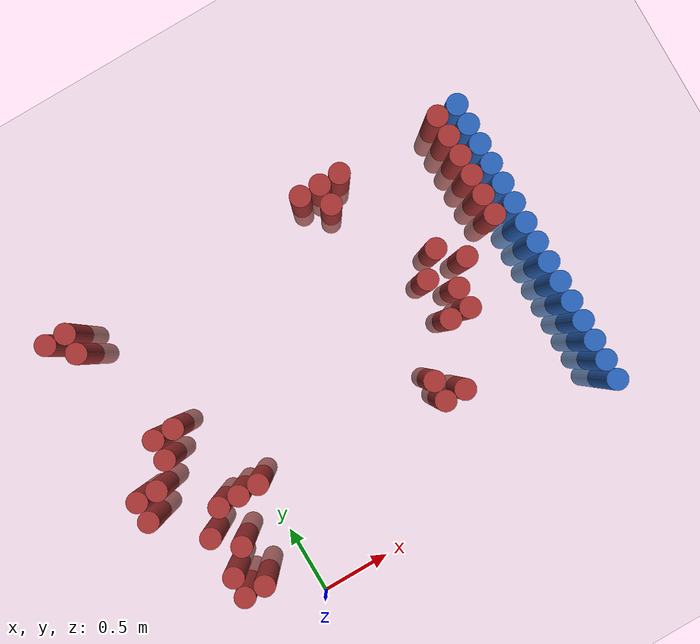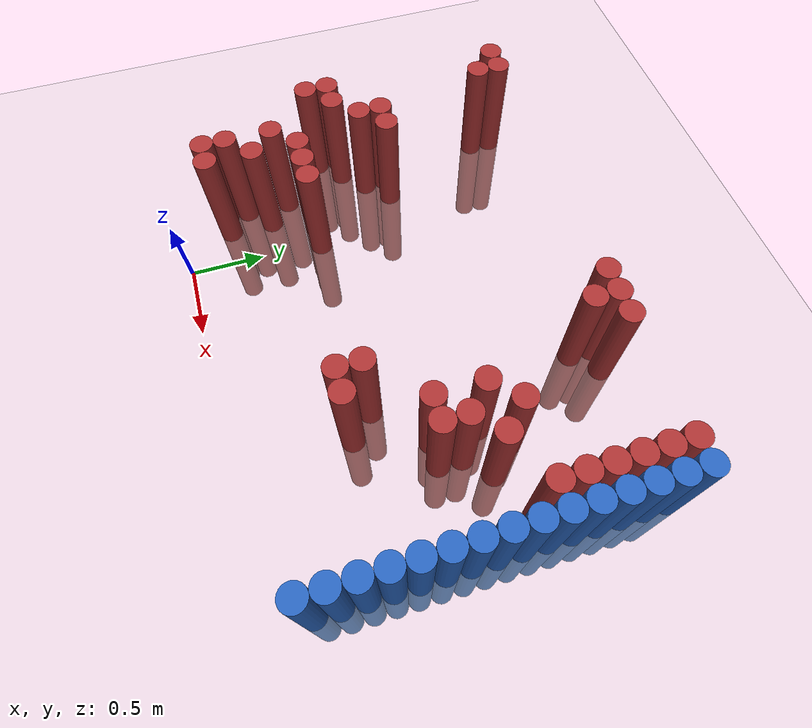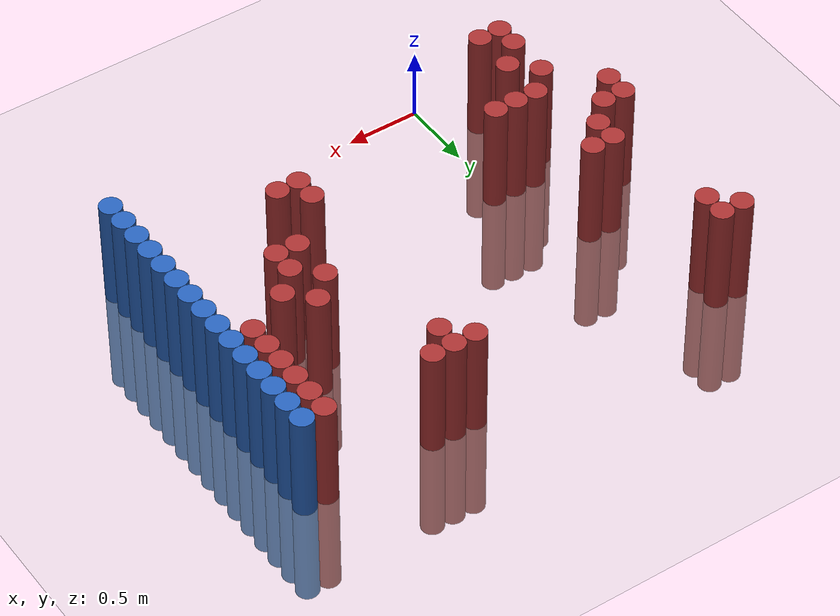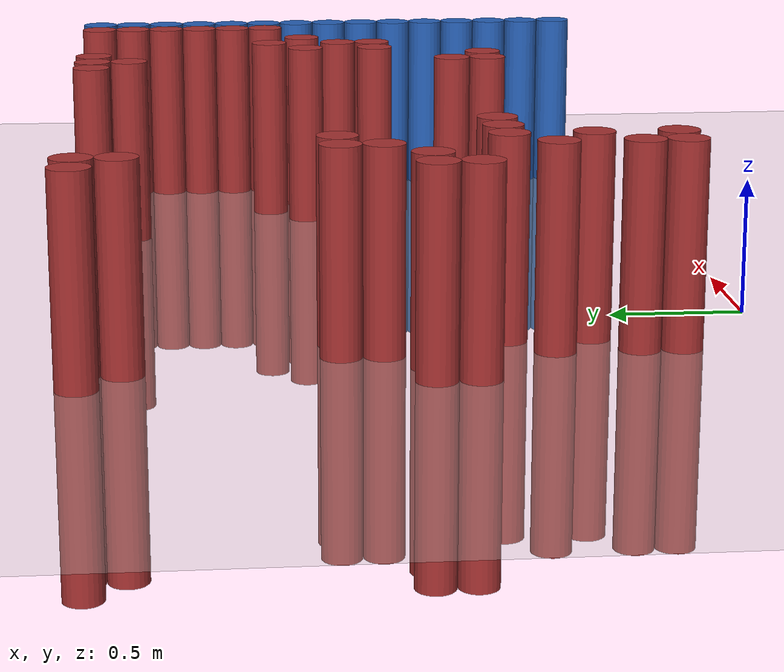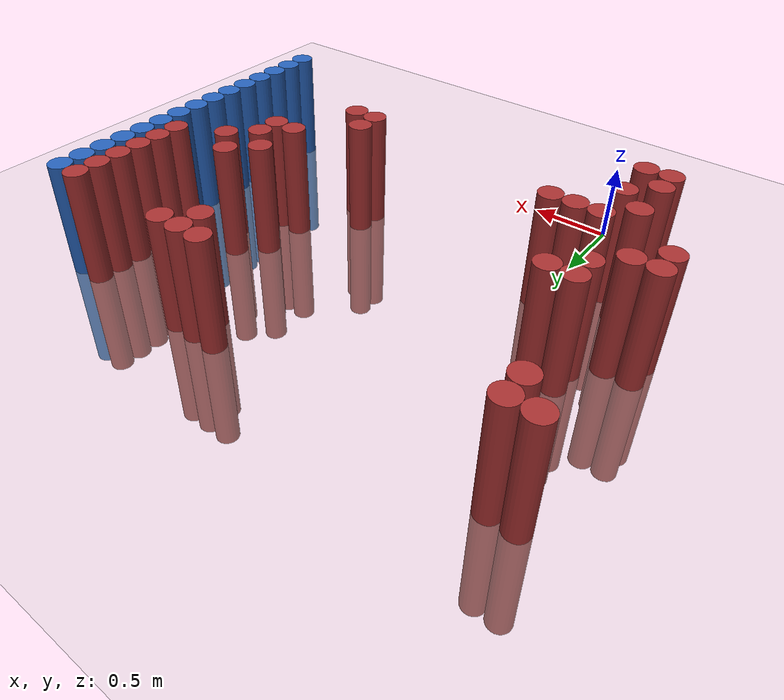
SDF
<sdf version="1.6">
 <world name="default">
  <model name="ground_plane">
   <static>1</static>
   <link name="link">
    <collision name="collision">
     <geometry><plane><normal>0 0 1</normal><size>100 100</size></plane></geometry>
     <surface><friction><ode><mu>100</mu><mu2>50</mu2></ode></friction></surface>
    </collision>
    <visual name="visual">
     <cast_shadows>0</cast_shadows>
     <geometry><plane><normal>0 0 1</normal><size>100 100</size></plane></geometry>
     <material>
      <script><uri>file://media/materials/scripts/gazebo.material</uri><name>Gazebo/Grey</name></script>
     </material>
    </visual>
   </link>
  </model>
  <model name="unit_cylinder_153">
   <static>1</static>
   <pose>-0.725000 1.075000 0.000000 0.000000 0.000000 0.000000</pose>
   <link name="link">
    <inertial>
     <mass>1</mass>
     <inertia><ixx>0.145833</ixx><ixy>0</ixy><ixz>0</ixz><iyy>0.145833</iyy><iyz>0</iyz><izz>0.125</izz></inertia>
    </inertial>
    <collision name="collision">
     <geometry><cylinder><radius>0.075000</radius><length>1.5</length></cylinder></geometry>
    </collision>
    <visual name="visual">
     <geometry><cylinder><radius>0.075000</radius><length>1.5</length></cylinder></geometry>
     <material>
      <ambient>0.648000 0.192000 0.192000 1</ambient>
      <diffuse>0.648000 0.192000 0.192000 1</diffuse>
     </material>
     <material>
      <script><name>Gazebo/Grey</name><uri>file://media/materials/scripts/gazebo.material</uri></script>
     </material>
    </visual>
   </link>
  </model>
  <model name="unit_cylinder_154">
   <static>1</static>
   <pose>-0.725000 1.225000 0.000000 0.000000 0.000000 0.000000</pose>
   <link name="link">
    <inertial>
     <mass>1</mass>
     <inertia><ixx>0.145833</ixx><ixy>0</ixy><ixz>0</ixz><iyy>0.145833</iyy><iyz>0</iyz><izz>0.125</izz></inertia>
    </inertial>
    <collision name="collision">
     <geometry><cylinder><radius>0.075000</radius><length>1.5</length></cylinder></geometry>
    </collision>
    <visual name="visual">
     <geometry><cylinder><radius>0.075000</radius><length>1.5</length></cylinder></geometry>
     <material>
      <ambient>0.648000 0.192000 0.192000 1</ambient>
      <diffuse>0.648000 0.192000 0.192000 1</diffuse>
     </material>
     <material>
      <script><name>Gazebo/Grey</name><uri>file://media/materials/scripts/gazebo.material</uri></script>
     </material>
    </visual>
   </link>
  </model>
  <model name="unit_cylinder_155">
   <static>1</static>
   <pose>-0.725000 2.425000 0.000000 0.000000 0.000000 0.000000</pose>
   <link name="link">
    <inertial>
     <mass>1</mass>
     <inertia><ixx>0.145833</ixx><ixy>0</ixy><ixz>0</ixz><iyy>0.145833</iyy><iyz>0</iyz><izz>0.125</izz></inertia>
    </inertial>
    <collision name="collision">
     <geometry><cylinder><radius>0.075000</radius><length>1.5</length></cylinder></geometry>
    </collision>
    <visual name="visual">
     <geometry><cylinder><radius>0.075000</radius><length>1.5</length></cylinder></geometry>
     <material>
      <ambient>0.648000 0.192000 0.192000 1</ambient>
      <diffuse>0.648000 0.192000 0.192000 1</diffuse>
     </material>
     <material>
      <script><name>Gazebo/Grey</name><uri>file://media/materials/scripts/gazebo.material</uri></script>
     </material>
    </visual>
   </link>
  </model>
  <model name="unit_cylinder_158">
   <static>1</static>
   <pose>-0.575000 1.225000 0.000000 0.000000 0.000000 0.000000</pose>
   <link name="link">
    <inertial>
     <mass>1</mass>
     <inertia><ixx>0.145833</ixx><ixy>0</ixy><ixz>0</ixz><iyy>0.145833</iyy><iyz>0</iyz><izz>0.125</izz></inertia>
    </inertial>
    <collision name="collision">
     <geometry><cylinder><radius>0.075000</radius><length>1.5</length></cylinder></geometry>
    </collision>
    <visual name="visual">
     <geometry><cylinder><radius>0.075000</radius><length>1.5</length></cylinder></geometry>
     <material>
      <ambient>0.648000 0.192000 0.192000 1</ambient>
      <diffuse>0.648000 0.192000 0.192000 1</diffuse>
     </material>
     <material>
      <script><name>Gazebo/Grey</name><uri>file://media/materials/scripts/gazebo.material</uri></script>
     </material>
    </visual>
   </link>
  </model>
  <model name="unit_cylinder_159">
   <static>1</static>
   <pose>-0.575000 2.275000 0.000000 0.000000 0.000000 0.000000</pose>
   <link name="link">
    <inertial>
     <mass>1</mass>
     <inertia><ixx>0.145833</ixx><ixy>0</ixy><ixz>0</ixz><iyy>0.145833</iyy><iyz>0</iyz><izz>0.125</izz></inertia>
    </inertial>
    <collision name="collision">
     <geometry><cylinder><radius>0.075000</radius><length>1.5</length></cylinder></geometry>
    </collision>
    <visual name="visual">
     <geometry><cylinder><radius>0.075000</radius><length>1.5</length></cylinder></geometry>
     <material>
      <ambient>0.648000 0.192000 0.192000 1</ambient>
      <diffuse>0.648000 0.192000 0.192000 1</diffuse>
     </material>
     <material>
      <script><name>Gazebo/Grey</name><uri>file://media/materials/scripts/gazebo.material</uri></script>
     </material>
    </visual>
   </link>
  </model>
  <model name="unit_cylinder_160">
   <static>1</static>
   <pose>-0.575000 2.425000 0.000000 0.000000 0.000000 0.000000</pose>
   <link name="link">
    <inertial>
     <mass>1</mass>
     <inertia><ixx>0.145833</ixx><ixy>0</ixy><ixz>0</ixz><iyy>0.145833</iyy><iyz>0</iyz><izz>0.125</izz></inertia>
    </inertial>
    <collision name="collision">
     <geometry><cylinder><radius>0.075000</radius><length>1.5</length></cylinder></geometry>
    </collision>
    <visual name="visual">
     <geometry><cylinder><radius>0.075000</radius><length>1.5</length></cylinder></geometry>
     <material>
      <ambient>0.648000 0.192000 0.192000 1</ambient>
      <diffuse>0.648000 0.192000 0.192000 1</diffuse>
     </material>
     <material>
      <script><name>Gazebo/Grey</name><uri>file://media/materials/scripts/gazebo.material</uri></script>
     </material>
    </visual>
   </link>
  </model>
  <model name="unit_cylinder_162">
   <static>1</static>
   <pose>-0.425000 0.325000 0.000000 0.000000 0.000000 0.000000</pose>
   <link name="link">
    <inertial>
     <mass>1</mass>
     <inertia><ixx>0.145833</ixx><ixy>0</ixy><ixz>0</ixz><iyy>0.145833</iyy><iyz>0</iyz><izz>0.125</izz></inertia>
    </inertial>
    <collision name="collision">
     <geometry><cylinder><radius>0.075000</radius><length>1.5</length></cylinder></geometry>
    </collision>
    <visual name="visual">
     <geometry><cylinder><radius>0.075000</radius><length>1.5</length></cylinder></geometry>
     <material>
      <ambient>0.648000 0.192000 0.192000 1</ambient>
      <diffuse>0.648000 0.192000 0.192000 1</diffuse>
     </material>
     <material>
      <script><name>Gazebo/Grey</name><uri>file://media/materials/scripts/gazebo.material</uri></script>
     </material>
    </visual>
   </link>
  </model>
  <model name="unit_cylinder_163">
   <static>1</static>
   <pose>-0.425000 0.475000 0.000000 0.000000 0.000000 0.000000</pose>
   <link name="link">
    <inertial>
     <mass>1</mass>
     <inertia><ixx>0.145833</ixx><ixy>0</ixy><ixz>0</ixz><iyy>0.145833</iyy><iyz>0</iyz><izz>0.125</izz></inertia>
    </inertial>
    <collision name="collision">
     <geometry><cylinder><radius>0.075000</radius><length>1.5</length></cylinder></geometry>
    </collision>
    <visual name="visual">
     <geometry><cylinder><radius>0.075000</radius><length>1.5</length></cylinder></geometry>
     <material>
      <ambient>0.648000 0.192000 0.192000 1</ambient>
      <diffuse>0.648000 0.192000 0.192000 1</diffuse>
     </material>
     <material>
      <script><name>Gazebo/Grey</name><uri>file://media/materials/scripts/gazebo.material</uri></script>
     </material>
    </visual>
   </link>
  </model>
  <model name="unit_cylinder_164">
   <static>1</static>
   <pose>-0.425000 0.775000 0.000000 0.000000 0.000000 0.000000</pose>
   <link name="link">
    <inertial>
     <mass>1</mass>
     <inertia><ixx>0.145833</ixx><ixy>0</ixy><ixz>0</ixz><iyy>0.145833</iyy><iyz>0</iyz><izz>0.125</izz></inertia>
    </inertial>
    <collision name="collision">
     <geometry><cylinder><radius>0.075000</radius><length>1.5</length></cylinder></geometry>
    </collision>
    <visual name="visual">
     <geometry><cylinder><radius>0.075000</radius><length>1.5</length></cylinder></geometry>
     <material>
      <ambient>0.648000 0.192000 0.192000 1</ambient>
      <diffuse>0.648000 0.192000 0.192000 1</diffuse>
     </material>
     <material>
      <script><name>Gazebo/Grey</name><uri>file://media/materials/scripts/gazebo.material</uri></script>
     </material>
    </visual>
   </link>
  </model>
  <model name="unit_cylinder_165">
   <static>1</static>
   <pose>-0.425000 1.375000 0.000000 0.000000 0.000000 0.000000</pose>
   <link name="link">
    <inertial>
     <mass>1</mass>
     <inertia><ixx>0.145833</ixx><ixy>0</ixy><ixz>0</ixz><iyy>0.145833</iyy><iyz>0</iyz><izz>0.125</izz></inertia>
    </inertial>
    <collision name="collision">
     <geometry><cylinder><radius>0.075000</radius><length>1.5</length></cylinder></geometry>
    </collision>
    <visual name="visual">
     <geometry><cylinder><radius>0.075000</radius><length>1.5</length></cylinder></geometry>
     <material>
      <ambient>0.648000 0.192000 0.192000 1</ambient>
      <diffuse>0.648000 0.192000 0.192000 1</diffuse>
     </material>
     <material>
      <script><name>Gazebo/Grey</name><uri>file://media/materials/scripts/gazebo.material</uri></script>
     </material>
    </visual>
   </link>
  </model>
  <model name="unit_cylinder_166">
   <static>1</static>
   <pose>-0.425000 1.525000 0.000000 0.000000 0.000000 0.000000</pose>
   <link name="link">
    <inertial>
     <mass>1</mass>
     <inertia><ixx>0.145833</ixx><ixy>0</ixy><ixz>0</ixz><iyy>0.145833</iyy><iyz>0</iyz><izz>0.125</izz></inertia>
    </inertial>
    <collision name="collision">
     <geometry><cylinder><radius>0.075000</radius><length>1.5</length></cylinder></geometry>
    </collision>
    <visual name="visual">
     <geometry><cylinder><radius>0.075000</radius><length>1.5</length></cylinder></geometry>
     <material>
      <ambient>0.648000 0.192000 0.192000 1</ambient>
      <diffuse>0.648000 0.192000 0.192000 1</diffuse>
     </material>
     <material>
      <script><name>Gazebo/Grey</name><uri>file://media/materials/scripts/gazebo.material</uri></script>
     </material>
    </visual>
   </link>
  </model>
  <model name="unit_cylinder_168">
   <static>1</static>
   <pose>-0.275000 0.325000 0.000000 0.000000 0.000000 0.000000</pose>
   <link name="link">
    <inertial>
     <mass>1</mass>
     <inertia><ixx>0.145833</ixx><ixy>0</ixy><ixz>0</ixz><iyy>0.145833</iyy><iyz>0</iyz><izz>0.125</izz></inertia>
    </inertial>
    <collision name="collision">
     <geometry><cylinder><radius>0.075000</radius><length>1.5</length></cylinder></geometry>
    </collision>
    <visual name="visual">
     <geometry><cylinder><radius>0.075000</radius><length>1.5</length></cylinder></geometry>
     <material>
      <ambient>0.648000 0.192000 0.192000 1</ambient>
      <diffuse>0.648000 0.192000 0.192000 1</diffuse>
     </material>
     <material>
      <script><name>Gazebo/Grey</name><uri>file://media/materials/scripts/gazebo.material</uri></script>
     </material>
    </visual>
   </link>
  </model>
  <model name="unit_cylinder_169">
   <static>1</static>
   <pose>-0.275000 0.625000 0.000000 0.000000 0.000000 0.000000</pose>
   <link name="link">
    <inertial>
     <mass>1</mass>
     <inertia><ixx>0.145833</ixx><ixy>0</ixy><ixz>0</ixz><iyy>0.145833</iyy><iyz>0</iyz><izz>0.125</izz></inertia>
    </inertial>
    <collision name="collision">
     <geometry><cylinder><radius>0.075000</radius><length>1.5</length></cylinder></geometry>
    </collision>
    <visual name="visual">
     <geometry><cylinder><radius>0.075000</radius><length>1.5</length></cylinder></geometry>
     <material>
      <ambient>0.648000 0.192000 0.192000 1</ambient>
      <diffuse>0.648000 0.192000 0.192000 1</diffuse>
     </material>
     <material>
      <script><name>Gazebo/Grey</name><uri>file://media/materials/scripts/gazebo.material</uri></script>
     </material>
    </visual>
   </link>
  </model>
  <model name="unit_cylinder_170">
   <static>1</static>
   <pose>-0.275000 0.925000 0.000000 0.000000 0.000000 0.000000</pose>
   <link name="link">
    <inertial>
     <mass>1</mass>
     <inertia><ixx>0.145833</ixx><ixy>0</ixy><ixz>0</ixz><iyy>0.145833</iyy><iyz>0</iyz><izz>0.125</izz></inertia>
    </inertial>
    <collision name="collision">
     <geometry><cylinder><radius>0.075000</radius><length>1.5</length></cylinder></geometry>
    </collision>
    <visual name="visual">
     <geometry><cylinder><radius>0.075000</radius><length>1.5</length></cylinder></geometry>
     <material>
      <ambient>0.648000 0.192000 0.192000 1</ambient>
      <diffuse>0.648000 0.192000 0.192000 1</diffuse>
     </material>
     <material>
      <script><name>Gazebo/Grey</name><uri>file://media/materials/scripts/gazebo.material</uri></script>
     </material>
    </visual>
   </link>
  </model>
  <model name="unit_cylinder_171">
   <static>1</static>
   <pose>-0.275000 1.525000 0.000000 0.000000 0.000000 0.000000</pose>
   <link name="link">
    <inertial>
     <mass>1</mass>
     <inertia><ixx>0.145833</ixx><ixy>0</ixy><ixz>0</ixz><iyy>0.145833</iyy><iyz>0</iyz><izz>0.125</izz></inertia>
    </inertial>
    <collision name="collision">
     <geometry><cylinder><radius>0.075000</radius><length>1.5</length></cylinder></geometry>
    </collision>
    <visual name="visual">
     <geometry><cylinder><radius>0.075000</radius><length>1.5</length></cylinder></geometry>
     <material>
      <ambient>0.648000 0.192000 0.192000 1</ambient>
      <diffuse>0.648000 0.192000 0.192000 1</diffuse>
     </material>
     <material>
      <script><name>Gazebo/Grey</name><uri>file://media/materials/scripts/gazebo.material</uri></script>
     </material>
    </visual>
   </link>
  </model>
  <model name="unit_cylinder_172">
   <static>1</static>
   <pose>-0.125000 0.925000 0.000000 0.000000 0.000000 0.000000</pose>
   <link name="link">
    <inertial>
     <mass>1</mass>
     <inertia><ixx>0.145833</ixx><ixy>0</ixy><ixz>0</ixz><iyy>0.145833</iyy><iyz>0</iyz><izz>0.125</izz></inertia>
    </inertial>
    <collision name="collision">
     <geometry><cylinder><radius>0.075000</radius><length>1.5</length></cylinder></geometry>
    </collision>
    <visual name="visual">
     <geometry><cylinder><radius>0.075000</radius><length>1.5</length></cylinder></geometry>
     <material>
      <ambient>0.648000 0.192000 0.192000 1</ambient>
      <diffuse>0.648000 0.192000 0.192000 1</diffuse>
     </material>
     <material>
      <script><name>Gazebo/Grey</name><uri>file://media/materials/scripts/gazebo.material</uri></script>
     </material>
    </visual>
   </link>
  </model>
  <model name="unit_cylinder_173">
   <static>1</static>
   <pose>0.025000 0.925000 0.000000 0.000000 0.000000 0.000000</pose>
   <link name="link">
    <inertial>
     <mass>1</mass>
     <inertia><ixx>0.145833</ixx><ixy>0</ixy><ixz>0</ixz><iyy>0.145833</iyy><iyz>0</iyz><izz>0.125</izz></inertia>
    </inertial>
    <collision name="collision">
     <geometry><cylinder><radius>0.075000</radius><length>1.5</length></cylinder></geometry>
    </collision>
    <visual name="visual">
     <geometry><cylinder><radius>0.075000</radius><length>1.5</length></cylinder></geometry>
     <material>
      <ambient>0.648000 0.192000 0.192000 1</ambient>
      <diffuse>0.648000 0.192000 0.192000 1</diffuse>
     </material>
     <material>
      <script><name>Gazebo/Grey</name><uri>file://media/materials/scripts/gazebo.material</uri></script>
     </material>
    </visual>
   </link>
  </model>
  <model name="unit_cylinder_184">
   <static>1</static>
   <pose>1.225000 2.425000 0.000000 0.000000 0.000000 0.000000</pose>
   <link name="link">
    <inertial>
     <mass>1</mass>
     <inertia><ixx>0.145833</ixx><ixy>0</ixy><ixz>0</ixz><iyy>0.145833</iyy><iyz>0</iyz><izz>0.125</izz></inertia>
    </inertial>
    <collision name="collision">
     <geometry><cylinder><radius>0.075000</radius><length>1.5</length></cylinder></geometry>
    </collision>
    <visual name="visual">
     <geometry><cylinder><radius>0.075000</radius><length>1.5</length></cylinder></geometry>
     <material>
      <ambient>0.648000 0.192000 0.192000 1</ambient>
      <diffuse>0.648000 0.192000 0.192000 1</diffuse>
     </material>
     <material>
      <script><name>Gazebo/Grey</name><uri>file://media/materials/scripts/gazebo.material</uri></script>
     </material>
    </visual>
   </link>
  </model>
  <model name="unit_cylinder_186">
   <static>1</static>
   <pose>1.375000 0.775000 0.000000 0.000000 0.000000 0.000000</pose>
   <link name="link">
    <inertial>
     <mass>1</mass>
     <inertia><ixx>0.145833</ixx><ixy>0</ixy><ixz>0</ixz><iyy>0.145833</iyy><iyz>0</iyz><izz>0.125</izz></inertia>
    </inertial>
    <collision name="collision">
     <geometry><cylinder><radius>0.075000</radius><length>1.5</length></cylinder></geometry>
    </collision>
    <visual name="visual">
     <geometry><cylinder><radius>0.075000</radius><length>1.5</length></cylinder></geometry>
     <material>
      <ambient>0.648000 0.192000 0.192000 1</ambient>
      <diffuse>0.648000 0.192000 0.192000 1</diffuse>
     </material>
     <material>
      <script><name>Gazebo/Grey</name><uri>file://media/materials/scripts/gazebo.material</uri></script>
     </material>
    </visual>
   </link>
  </model>
  <model name="unit_cylinder_187">
   <static>1</static>
   <pose>1.375000 0.925000 0.000000 0.000000 0.000000 0.000000</pose>
   <link name="link">
    <inertial>
     <mass>1</mass>
     <inertia><ixx>0.145833</ixx><ixy>0</ixy><ixz>0</ixz><iyy>0.145833</iyy><iyz>0</iyz><izz>0.125</izz></inertia>
    </inertial>
    <collision name="collision">
     <geometry><cylinder><radius>0.075000</radius><length>1.5</length></cylinder></geometry>
    </collision>
    <visual name="visual">
     <geometry><cylinder><radius>0.075000</radius><length>1.5</length></cylinder></geometry>
     <material>
      <ambient>0.648000 0.192000 0.192000 1</ambient>
      <diffuse>0.648000 0.192000 0.192000 1</diffuse>
     </material>
     <material>
      <script><name>Gazebo/Grey</name><uri>file://media/materials/scripts/gazebo.material</uri></script>
     </material>
    </visual>
   </link>
  </model>
  <model name="unit_cylinder_188">
   <static>1</static>
   <pose>1.375000 2.275000 0.000000 0.000000 0.000000 0.000000</pose>
   <link name="link">
    <inertial>
     <mass>1</mass>
     <inertia><ixx>0.145833</ixx><ixy>0</ixy><ixz>0</ixz><iyy>0.145833</iyy><iyz>0</iyz><izz>0.125</izz></inertia>
    </inertial>
    <collision name="collision">
     <geometry><cylinder><radius>0.075000</radius><length>1.5</length></cylinder></geometry>
    </collision>
    <visual name="visual">
     <geometry><cylinder><radius>0.075000</radius><length>1.5</length></cylinder></geometry>
     <material>
      <ambient>0.648000 0.192000 0.192000 1</ambient>
      <diffuse>0.648000 0.192000 0.192000 1</diffuse>
     </material>
     <material>
      <script><name>Gazebo/Grey</name><uri>file://media/materials/scripts/gazebo.material</uri></script>
     </material>
    </visual>
   </link>
  </model>
  <model name="unit_cylinder_189">
   <static>1</static>
   <pose>1.375000 2.425000 0.000000 0.000000 0.000000 0.000000</pose>
   <link name="link">
    <inertial>
     <mass>1</mass>
     <inertia><ixx>0.145833</ixx><ixy>0</ixy><ixz>0</ixz><iyy>0.145833</iyy><iyz>0</iyz><izz>0.125</izz></inertia>
    </inertial>
    <collision name="collision">
     <geometry><cylinder><radius>0.075000</radius><length>1.5</length></cylinder></geometry>
    </collision>
    <visual name="visual">
     <geometry><cylinder><radius>0.075000</radius><length>1.5</length></cylinder></geometry>
     <material>
      <ambient>0.648000 0.192000 0.192000 1</ambient>
      <diffuse>0.648000 0.192000 0.192000 1</diffuse>
     </material>
     <material>
      <script><name>Gazebo/Grey</name><uri>file://media/materials/scripts/gazebo.material</uri></script>
     </material>
    </visual>
   </link>
  </model>
  <model name="unit_cylinder_191">
   <static>1</static>
   <pose>1.525000 0.775000 0.000000 0.000000 0.000000 0.000000</pose>
   <link name="link">
    <inertial>
     <mass>1</mass>
     <inertia><ixx>0.145833</ixx><ixy>0</ixy><ixz>0</ixz><iyy>0.145833</iyy><iyz>0</iyz><izz>0.125</izz></inertia>
    </inertial>
    <collision name="collision">
     <geometry><cylinder><radius>0.075000</radius><length>1.5</length></cylinder></geometry>
    </collision>
    <visual name="visual">
     <geometry><cylinder><radius>0.075000</radius><length>1.5</length></cylinder></geometry>
     <material>
      <ambient>0.648000 0.192000 0.192000 1</ambient>
      <diffuse>0.648000 0.192000 0.192000 1</diffuse>
     </material>
     <material>
      <script><name>Gazebo/Grey</name><uri>file://media/materials/scripts/gazebo.material</uri></script>
     </material>
    </visual>
   </link>
  </model>
  <model name="unit_cylinder_192">
   <static>1</static>
   <pose>1.525000 2.425000 0.000000 0.000000 0.000000 0.000000</pose>
   <link name="link">
    <inertial>
     <mass>1</mass>
     <inertia><ixx>0.145833</ixx><ixy>0</ixy><ixz>0</ixz><iyy>0.145833</iyy><iyz>0</iyz><izz>0.125</izz></inertia>
    </inertial>
    <collision name="collision">
     <geometry><cylinder><radius>0.075000</radius><length>1.5</length></cylinder></geometry>
    </collision>
    <visual name="visual">
     <geometry><cylinder><radius>0.075000</radius><length>1.5</length></cylinder></geometry>
     <material>
      <ambient>0.648000 0.192000 0.192000 1</ambient>
      <diffuse>0.648000 0.192000 0.192000 1</diffuse>
     </material>
     <material>
      <script><name>Gazebo/Grey</name><uri>file://media/materials/scripts/gazebo.material</uri></script>
     </material>
    </visual>
   </link>
  </model>
  <model name="unit_cylinder_195">
   <static>1</static>
   <pose>1.675000 1.225000 0.000000 0.000000 0.000000 0.000000</pose>
   <link name="link">
    <inertial>
     <mass>1</mass>
     <inertia><ixx>0.145833</ixx><ixy>0</ixy><ixz>0</ixz><iyy>0.145833</iyy><iyz>0</iyz><izz>0.125</izz></inertia>
    </inertial>
    <collision name="collision">
     <geometry><cylinder><radius>0.075000</radius><length>1.5</length></cylinder></geometry>
    </collision>
    <visual name="visual">
     <geometry><cylinder><radius>0.075000</radius><length>1.5</length></cylinder></geometry>
     <material>
      <ambient>0.648000 0.192000 0.192000 1</ambient>
      <diffuse>0.648000 0.192000 0.192000 1</diffuse>
     </material>
     <material>
      <script><name>Gazebo/Grey</name><uri>file://media/materials/scripts/gazebo.material</uri></script>
     </material>
    </visual>
   </link>
  </model>
  <model name="unit_cylinder_196">
   <static>1</static>
   <pose>1.675000 1.525000 0.000000 0.000000 0.000000 0.000000</pose>
   <link name="link">
    <inertial>
     <mass>1</mass>
     <inertia><ixx>0.145833</ixx><ixy>0</ixy><ixz>0</ixz><iyy>0.145833</iyy><iyz>0</iyz><izz>0.125</izz></inertia>
    </inertial>
    <collision name="collision">
     <geometry><cylinder><radius>0.075000</radius><length>1.5</length></cylinder></geometry>
    </collision>
    <visual name="visual">
     <geometry><cylinder><radius>0.075000</radius><length>1.5</length></cylinder></geometry>
     <material>
      <ambient>0.648000 0.192000 0.192000 1</ambient>
      <diffuse>0.648000 0.192000 0.192000 1</diffuse>
     </material>
     <material>
      <script><name>Gazebo/Grey</name><uri>file://media/materials/scripts/gazebo.material</uri></script>
     </material>
    </visual>
   </link>
  </model>
  <model name="unit_cylinder_197">
   <static>1</static>
   <pose>1.825000 1.225000 0.000000 0.000000 0.000000 0.000000</pose>
   <link name="link">
    <inertial>
     <mass>1</mass>
     <inertia><ixx>0.145833</ixx><ixy>0</ixy><ixz>0</ixz><iyy>0.145833</iyy><iyz>0</iyz><izz>0.125</izz></inertia>
    </inertial>
    <collision name="collision">
     <geometry><cylinder><radius>0.075000</radius><length>1.5</length></cylinder></geometry>
    </collision>
    <visual name="visual">
     <geometry><cylinder><radius>0.075000</radius><length>1.5</length></cylinder></geometry>
     <material>
      <ambient>0.648000 0.192000 0.192000 1</ambient>
      <diffuse>0.648000 0.192000 0.192000 1</diffuse>
     </material>
     <material>
      <script><name>Gazebo/Grey</name><uri>file://media/materials/scripts/gazebo.material</uri></script>
     </material>
    </visual>
   </link>
  </model>
  <model name="unit_cylinder_198">
   <static>1</static>
   <pose>1.825000 1.375000 0.000000 0.000000 0.000000 0.000000</pose>
   <link name="link">
    <inertial>
     <mass>1</mass>
     <inertia><ixx>0.145833</ixx><ixy>0</ixy><ixz>0</ixz><iyy>0.145833</iyy><iyz>0</iyz><izz>0.125</izz></inertia>
    </inertial>
    <collision name="collision">
     <geometry><cylinder><radius>0.075000</radius><length>1.5</length></cylinder></geometry>
    </collision>
    <visual name="visual">
     <geometry><cylinder><radius>0.075000</radius><length>1.5</length></cylinder></geometry>
     <material>
      <ambient>0.648000 0.192000 0.192000 1</ambient>
      <diffuse>0.648000 0.192000 0.192000 1</diffuse>
     </material>
     <material>
      <script><name>Gazebo/Grey</name><uri>file://media/materials/scripts/gazebo.material</uri></script>
     </material>
    </visual>
   </link>
  </model>
  <model name="unit_cylinder_199">
   <static>1</static>
   <pose>1.825000 1.675000 0.000000 0.000000 0.000000 0.000000</pose>
   <link name="link">
    <inertial>
     <mass>1</mass>
     <inertia><ixx>0.145833</ixx><ixy>0</ixy><ixz>0</ixz><iyy>0.145833</iyy><iyz>0</iyz><izz>0.125</izz></inertia>
    </inertial>
    <collision name="collision">
     <geometry><cylinder><radius>0.075000</radius><length>1.5</length></cylinder></geometry>
    </collision>
    <visual name="visual">
     <geometry><cylinder><radius>0.075000</radius><length>1.5</length></cylinder></geometry>
     <material>
      <ambient>0.648000 0.192000 0.192000 1</ambient>
      <diffuse>0.648000 0.192000 0.192000 1</diffuse>
     </material>
     <material>
      <script><name>Gazebo/Grey</name><uri>file://media/materials/scripts/gazebo.material</uri></script>
     </material>
    </visual>
   </link>
  </model>
  <model name="unit_cylinder_201">
   <static>1</static>
   <pose>1.975000 1.525000 0.000000 0.000000 0.000000 0.000000</pose>
   <link name="link">
    <inertial>
     <mass>1</mass>
     <inertia><ixx>0.145833</ixx><ixy>0</ixy><ixz>0</ixz><iyy>0.145833</iyy><iyz>0</iyz><izz>0.125</izz></inertia>
    </inertial>
    <collision name="collision">
     <geometry><cylinder><radius>0.075000</radius><length>1.5</length></cylinder></geometry>
    </collision>
    <visual name="visual">
     <geometry><cylinder><radius>0.075000</radius><length>1.5</length></cylinder></geometry>
     <material>
      <ambient>0.648000 0.192000 0.192000 1</ambient>
      <diffuse>0.648000 0.192000 0.192000 1</diffuse>
     </material>
     <material>
      <script><name>Gazebo/Grey</name><uri>file://media/materials/scripts/gazebo.material</uri></script>
     </material>
    </visual>
   </link>
  </model>
  <model name="unit_cylinder_207">
   <static>1</static>
   <pose>2.275000 1.675000 0.000000 0.000000 0.000000 0.000000</pose>
   <link name="link">
    <inertial>
     <mass>1</mass>
     <inertia><ixx>0.145833</ixx><ixy>0</ixy><ixz>0</ixz><iyy>0.145833</iyy><iyz>0</iyz><izz>0.125</izz></inertia>
    </inertial>
    <collision name="collision">
     <geometry><cylinder><radius>0.075000</radius><length>1.5</length></cylinder></geometry>
    </collision>
    <visual name="visual">
     <geometry><cylinder><radius>0.075000</radius><length>1.5</length></cylinder></geometry>
     <material>
      <ambient>0.648000 0.192000 0.192000 1</ambient>
      <diffuse>0.648000 0.192000 0.192000 1</diffuse>
     </material>
     <material>
      <script><name>Gazebo/Grey</name><uri>file://media/materials/scripts/gazebo.material</uri></script>
     </material>
    </visual>
   </link>
  </model>
  <model name="unit_cylinder_208">
   <static>1</static>
   <pose>2.275000 1.825000 0.000000 0.000000 0.000000 0.000000</pose>
   <link name="link">
    <inertial>
     <mass>1</mass>
     <inertia><ixx>0.145833</ixx><ixy>0</ixy><ixz>0</ixz><iyy>0.145833</iyy><iyz>0</iyz><izz>0.125</izz></inertia>
    </inertial>
    <collision name="collision">
     <geometry><cylinder><radius>0.075000</radius><length>1.5</length></cylinder></geometry>
    </collision>
    <visual name="visual">
     <geometry><cylinder><radius>0.075000</radius><length>1.5</length></cylinder></geometry>
     <material>
      <ambient>0.648000 0.192000 0.192000 1</ambient>
      <diffuse>0.648000 0.192000 0.192000 1</diffuse>
     </material>
     <material>
      <script><name>Gazebo/Grey</name><uri>file://media/materials/scripts/gazebo.material</uri></script>
     </material>
    </visual>
   </link>
  </model>
  <model name="unit_cylinder_209">
   <static>1</static>
   <pose>2.275000 1.975000 0.000000 0.000000 0.000000 0.000000</pose>
   <link name="link">
    <inertial>
     <mass>1</mass>
     <inertia><ixx>0.145833</ixx><ixy>0</ixy><ixz>0</ixz><iyy>0.145833</iyy><iyz>0</iyz><izz>0.125</izz></inertia>
    </inertial>
    <collision name="collision">
     <geometry><cylinder><radius>0.075000</radius><length>1.5</length></cylinder></geometry>
    </collision>
    <visual name="visual">
     <geometry><cylinder><radius>0.075000</radius><length>1.5</length></cylinder></geometry>
     <material>
      <ambient>0.648000 0.192000 0.192000 1</ambient>
      <diffuse>0.648000 0.192000 0.192000 1</diffuse>
     </material>
     <material>
      <script><name>Gazebo/Grey</name><uri>file://media/materials/scripts/gazebo.material</uri></script>
     </material>
    </visual>
   </link>
  </model>
  <model name="unit_cylinder_210">
   <static>1</static>
   <pose>2.275000 2.125000 0.000000 0.000000 0.000000 0.000000</pose>
   <link name="link">
    <inertial>
     <mass>1</mass>
     <inertia><ixx>0.145833</ixx><ixy>0</ixy><ixz>0</ixz><iyy>0.145833</iyy><iyz>0</iyz><izz>0.125</izz></inertia>
    </inertial>
    <collision name="collision">
     <geometry><cylinder><radius>0.075000</radius><length>1.5</length></cylinder></geometry>
    </collision>
    <visual name="visual">
     <geometry><cylinder><radius>0.075000</radius><length>1.5</length></cylinder></geometry>
     <material>
      <ambient>0.648000 0.192000 0.192000 1</ambient>
      <diffuse>0.648000 0.192000 0.192000 1</diffuse>
     </material>
     <material>
      <script><name>Gazebo/Grey</name><uri>file://media/materials/scripts/gazebo.material</uri></script>
     </material>
    </visual>
   </link>
  </model>
  <model name="unit_cylinder_211">
   <static>1</static>
   <pose>2.275000 2.275000 0.000000 0.000000 0.000000 0.000000</pose>
   <link name="link">
    <inertial>
     <mass>1</mass>
     <inertia><ixx>0.145833</ixx><ixy>0</ixy><ixz>0</ixz><iyy>0.145833</iyy><iyz>0</iyz><izz>0.125</izz></inertia>
    </inertial>
    <collision name="collision">
     <geometry><cylinder><radius>0.075000</radius><length>1.5</length></cylinder></geometry>
    </collision>
    <visual name="visual">
     <geometry><cylinder><radius>0.075000</radius><length>1.5</length></cylinder></geometry>
     <material>
      <ambient>0.648000 0.192000 0.192000 1</ambient>
      <diffuse>0.648000 0.192000 0.192000 1</diffuse>
     </material>
     <material>
      <script><name>Gazebo/Grey</name><uri>file://media/materials/scripts/gazebo.material</uri></script>
     </material>
    </visual>
   </link>
  </model>
  <model name="unit_cylinder_212">
   <static>1</static>
   <pose>2.275000 2.425000 0.000000 0.000000 0.000000 0.000000</pose>
   <link name="link">
    <inertial>
     <mass>1</mass>
     <inertia><ixx>0.145833</ixx><ixy>0</ixy><ixz>0</ixz><iyy>0.145833</iyy><iyz>0</iyz><izz>0.125</izz></inertia>
    </inertial>
    <collision name="collision">
     <geometry><cylinder><radius>0.075000</radius><length>1.5</length></cylinder></geometry>
    </collision>
    <visual name="visual">
     <geometry><cylinder><radius>0.075000</radius><length>1.5</length></cylinder></geometry>
     <material>
      <ambient>0.648000 0.192000 0.192000 1</ambient>
      <diffuse>0.648000 0.192000 0.192000 1</diffuse>
     </material>
     <material>
      <script><name>Gazebo/Grey</name><uri>file://media/materials/scripts/gazebo.material</uri></script>
     </material>
    </visual>
   </link>
  </model>
  <model name="unit_cylinder_226">
   <static>1</static>
   <pose>2.425000 0.325000 0.000000 0.000000 0.000000 0.000000</pose>
   <link name="link">
    <inertial>
     <mass>1</mass>
     <inertia><ixx>0.145833</ixx><ixy>0</ixy><ixz>0</ixz><iyy>0.145833</iyy><iyz>0</iyz><izz>0.125</izz></inertia>
    </inertial>
    <collision name="collision">
     <geometry><cylinder><radius>0.075000</radius><length>1.5</length></cylinder></geometry>
    </collision>
    <visual name="visual">
     <geometry><cylinder><radius>0.075000</radius><length>1.5</length></cylinder></geometry>
     <material>
      <ambient>0.152000 0.379000 0.720000 1</ambient>
      <diffuse>0.152000 0.379000 0.720000 1</diffuse>
     </material>
     <material>
      <script><name>Gazebo/Grey</name><uri>file://media/materials/scripts/gazebo.material</uri></script>
     </material>
    </visual>
   </link>
  </model>
  <model name="unit_cylinder_227">
   <static>1</static>
   <pose>2.425000 0.475000 0.000000 0.000000 0.000000 0.000000</pose>
   <link name="link">
    <inertial>
     <mass>1</mass>
     <inertia><ixx>0.145833</ixx><ixy>0</ixy><ixz>0</ixz><iyy>0.145833</iyy><iyz>0</iyz><izz>0.125</izz></inertia>
    </inertial>
    <collision name="collision">
     <geometry><cylinder><radius>0.075000</radius><length>1.5</length></cylinder></geometry>
    </collision>
    <visual name="visual">
     <geometry><cylinder><radius>0.075000</radius><length>1.5</length></cylinder></geometry>
     <material>
      <ambient>0.152000 0.379000 0.720000 1</ambient>
      <diffuse>0.152000 0.379000 0.720000 1</diffuse>
     </material>
     <material>
      <script><name>Gazebo/Grey</name><uri>file://media/materials/scripts/gazebo.material</uri></script>
     </material>
    </visual>
   </link>
  </model>
  <model name="unit_cylinder_228">
   <static>1</static>
   <pose>2.425000 0.625000 0.000000 0.000000 0.000000 0.000000</pose>
   <link name="link">
    <inertial>
     <mass>1</mass>
     <inertia><ixx>0.145833</ixx><ixy>0</ixy><ixz>0</ixz><iyy>0.145833</iyy><iyz>0</iyz><izz>0.125</izz></inertia>
    </inertial>
    <collision name="collision">
     <geometry><cylinder><radius>0.075000</radius><length>1.5</length></cylinder></geometry>
    </collision>
    <visual name="visual">
     <geometry><cylinder><radius>0.075000</radius><length>1.5</length></cylinder></geometry>
     <material>
      <ambient>0.152000 0.379000 0.720000 1</ambient>
      <diffuse>0.152000 0.379000 0.720000 1</diffuse>
     </material>
     <material>
      <script><name>Gazebo/Grey</name><uri>file://media/materials/scripts/gazebo.material</uri></script>
     </material>
    </visual>
   </link>
  </model>
  <model name="unit_cylinder_229">
   <static>1</static>
   <pose>2.425000 0.775000 0.000000 0.000000 0.000000 0.000000</pose>
   <link name="link">
    <inertial>
     <mass>1</mass>
     <inertia><ixx>0.145833</ixx><ixy>0</ixy><ixz>0</ixz><iyy>0.145833</iyy><iyz>0</iyz><izz>0.125</izz></inertia>
    </inertial>
    <collision name="collision">
     <geometry><cylinder><radius>0.075000</radius><length>1.5</length></cylinder></geometry>
    </collision>
    <visual name="visual">
     <geometry><cylinder><radius>0.075000</radius><length>1.5</length></cylinder></geometry>
     <material>
      <ambient>0.152000 0.379000 0.720000 1</ambient>
      <diffuse>0.152000 0.379000 0.720000 1</diffuse>
     </material>
     <material>
      <script><name>Gazebo/Grey</name><uri>file://media/materials/scripts/gazebo.material</uri></script>
     </material>
    </visual>
   </link>
  </model>
  <model name="unit_cylinder_230">
   <static>1</static>
   <pose>2.425000 0.925000 0.000000 0.000000 0.000000 0.000000</pose>
   <link name="link">
    <inertial>
     <mass>1</mass>
     <inertia><ixx>0.145833</ixx><ixy>0</ixy><ixz>0</ixz><iyy>0.145833</iyy><iyz>0</iyz><izz>0.125</izz></inertia>
    </inertial>
    <collision name="collision">
     <geometry><cylinder><radius>0.075000</radius><length>1.5</length></cylinder></geometry>
    </collision>
    <visual name="visual">
     <geometry><cylinder><radius>0.075000</radius><length>1.5</length></cylinder></geometry>
     <material>
      <ambient>0.152000 0.379000 0.720000 1</ambient>
      <diffuse>0.152000 0.379000 0.720000 1</diffuse>
     </material>
     <material>
      <script><name>Gazebo/Grey</name><uri>file://media/materials/scripts/gazebo.material</uri></script>
     </material>
    </visual>
   </link>
  </model>
  <model name="unit_cylinder_231">
   <static>1</static>
   <pose>2.425000 1.075000 0.000000 0.000000 0.000000 0.000000</pose>
   <link name="link">
    <inertial>
     <mass>1</mass>
     <inertia><ixx>0.145833</ixx><ixy>0</ixy><ixz>0</ixz><iyy>0.145833</iyy><iyz>0</iyz><izz>0.125</izz></inertia>
    </inertial>
    <collision name="collision">
     <geometry><cylinder><radius>0.075000</radius><length>1.5</length></cylinder></geometry>
    </collision>
    <visual name="visual">
     <geometry><cylinder><radius>0.075000</radius><length>1.5</length></cylinder></geometry>
     <material>
      <ambient>0.152000 0.379000 0.720000 1</ambient>
      <diffuse>0.152000 0.379000 0.720000 1</diffuse>
     </material>
     <material>
      <script><name>Gazebo/Grey</name><uri>file://media/materials/scripts/gazebo.material</uri></script>
     </material>
    </visual>
   </link>
  </model>
  <model name="unit_cylinder_232">
   <static>1</static>
   <pose>2.425000 1.225000 0.000000 0.000000 0.000000 0.000000</pose>
   <link name="link">
    <inertial>
     <mass>1</mass>
     <inertia><ixx>0.145833</ixx><ixy>0</ixy><ixz>0</ixz><iyy>0.145833</iyy><iyz>0</iyz><izz>0.125</izz></inertia>
    </inertial>
    <collision name="collision">
     <geometry><cylinder><radius>0.075000</radius><length>1.5</length></cylinder></geometry>
    </collision>
    <visual name="visual">
     <geometry><cylinder><radius>0.075000</radius><length>1.5</length></cylinder></geometry>
     <material>
      <ambient>0.152000 0.379000 0.720000 1</ambient>
      <diffuse>0.152000 0.379000 0.720000 1</diffuse>
     </material>
     <material>
      <script><name>Gazebo/Grey</name><uri>file://media/materials/scripts/gazebo.material</uri></script>
     </material>
    </visual>
   </link>
  </model>
  <model name="unit_cylinder_233">
   <static>1</static>
   <pose>2.425000 1.375000 0.000000 0.000000 0.000000 0.000000</pose>
   <link name="link">
    <inertial>
     <mass>1</mass>
     <inertia><ixx>0.145833</ixx><ixy>0</ixy><ixz>0</ixz><iyy>0.145833</iyy><iyz>0</iyz><izz>0.125</izz></inertia>
    </inertial>
    <collision name="collision">
     <geometry><cylinder><radius>0.075000</radius><length>1.5</length></cylinder></geometry>
    </collision>
    <visual name="visual">
     <geometry><cylinder><radius>0.075000</radius><length>1.5</length></cylinder></geometry>
     <material>
      <ambient>0.152000 0.379000 0.720000 1</ambient>
      <diffuse>0.152000 0.379000 0.720000 1</diffuse>
     </material>
     <material>
      <script><name>Gazebo/Grey</name><uri>file://media/materials/scripts/gazebo.material</uri></script>
     </material>
    </visual>
   </link>
  </model>
  <model name="unit_cylinder_234">
   <static>1</static>
   <pose>2.425000 1.525000 0.000000 0.000000 0.000000 0.000000</pose>
   <link name="link">
    <inertial>
     <mass>1</mass>
     <inertia><ixx>0.145833</ixx><ixy>0</ixy><ixz>0</ixz><iyy>0.145833</iyy><iyz>0</iyz><izz>0.125</izz></inertia>
    </inertial>
    <collision name="collision">
     <geometry><cylinder><radius>0.075000</radius><length>1.5</length></cylinder></geometry>
    </collision>
    <visual name="visual">
     <geometry><cylinder><radius>0.075000</radius><length>1.5</length></cylinder></geometry>
     <material>
      <ambient>0.152000 0.379000 0.720000 1</ambient>
      <diffuse>0.152000 0.379000 0.720000 1</diffuse>
     </material>
     <material>
      <script><name>Gazebo/Grey</name><uri>file://media/materials/scripts/gazebo.material</uri></script>
     </material>
    </visual>
   </link>
  </model>
  <model name="unit_cylinder_235">
   <static>1</static>
   <pose>2.425000 1.675000 0.000000 0.000000 0.000000 0.000000</pose>
   <link name="link">
    <inertial>
     <mass>1</mass>
     <inertia><ixx>0.145833</ixx><ixy>0</ixy><ixz>0</ixz><iyy>0.145833</iyy><iyz>0</iyz><izz>0.125</izz></inertia>
    </inertial>
    <collision name="collision">
     <geometry><cylinder><radius>0.075000</radius><length>1.5</length></cylinder></geometry>
    </collision>
    <visual name="visual">
     <geometry><cylinder><radius>0.075000</radius><length>1.5</length></cylinder></geometry>
     <material>
      <ambient>0.152000 0.379000 0.720000 1</ambient>
      <diffuse>0.152000 0.379000 0.720000 1</diffuse>
     </material>
     <material>
      <script><name>Gazebo/Grey</name><uri>file://media/materials/scripts/gazebo.material</uri></script>
     </material>
    </visual>
   </link>
  </model>
  <model name="unit_cylinder_236">
   <static>1</static>
   <pose>2.425000 1.825000 0.000000 0.000000 0.000000 0.000000</pose>
   <link name="link">
    <inertial>
     <mass>1</mass>
     <inertia><ixx>0.145833</ixx><ixy>0</ixy><ixz>0</ixz><iyy>0.145833</iyy><iyz>0</iyz><izz>0.125</izz></inertia>
    </inertial>
    <collision name="collision">
     <geometry><cylinder><radius>0.075000</radius><length>1.5</length></cylinder></geometry>
    </collision>
    <visual name="visual">
     <geometry><cylinder><radius>0.075000</radius><length>1.5</length></cylinder></geometry>
     <material>
      <ambient>0.152000 0.379000 0.720000 1</ambient>
      <diffuse>0.152000 0.379000 0.720000 1</diffuse>
     </material>
     <material>
      <script><name>Gazebo/Grey</name><uri>file://media/materials/scripts/gazebo.material</uri></script>
     </material>
    </visual>
   </link>
  </model>
  <model name="unit_cylinder_237">
   <static>1</static>
   <pose>2.425000 1.975000 0.000000 0.000000 0.000000 0.000000</pose>
   <link name="link">
    <inertial>
     <mass>1</mass>
     <inertia><ixx>0.145833</ixx><ixy>0</ixy><ixz>0</ixz><iyy>0.145833</iyy><iyz>0</iyz><izz>0.125</izz></inertia>
    </inertial>
    <collision name="collision">
     <geometry><cylinder><radius>0.075000</radius><length>1.5</length></cylinder></geometry>
    </collision>
    <visual name="visual">
     <geometry><cylinder><radius>0.075000</radius><length>1.5</length></cylinder></geometry>
     <material>
      <ambient>0.152000 0.379000 0.720000 1</ambient>
      <diffuse>0.152000 0.379000 0.720000 1</diffuse>
     </material>
     <material>
      <script><name>Gazebo/Grey</name><uri>file://media/materials/scripts/gazebo.material</uri></script>
     </material>
    </visual>
   </link>
  </model>
  <model name="unit_cylinder_238">
   <static>1</static>
   <pose>2.425000 2.125000 0.000000 0.000000 0.000000 0.000000</pose>
   <link name="link">
    <inertial>
     <mass>1</mass>
     <inertia><ixx>0.145833</ixx><ixy>0</ixy><ixz>0</ixz><iyy>0.145833</iyy><iyz>0</iyz><izz>0.125</izz></inertia>
    </inertial>
    <collision name="collision">
     <geometry><cylinder><radius>0.075000</radius><length>1.5</length></cylinder></geometry>
    </collision>
    <visual name="visual">
     <geometry><cylinder><radius>0.075000</radius><length>1.5</length></cylinder></geometry>
     <material>
      <ambient>0.152000 0.379000 0.720000 1</ambient>
      <diffuse>0.152000 0.379000 0.720000 1</diffuse>
     </material>
     <material>
      <script><name>Gazebo/Grey</name><uri>file://media/materials/scripts/gazebo.material</uri></script>
     </material>
    </visual>
   </link>
  </model>
  <model name="unit_cylinder_239">
   <static>1</static>
   <pose>2.425000 2.275000 0.000000 0.000000 0.000000 0.000000</pose>
   <link name="link">
    <inertial>
     <mass>1</mass>
     <inertia><ixx>0.145833</ixx><ixy>0</ixy><ixz>0</ixz><iyy>0.145833</iyy><iyz>0</iyz><izz>0.125</izz></inertia>
    </inertial>
    <collision name="collision">
     <geometry><cylinder><radius>0.075000</radius><length>1.5</length></cylinder></geometry>
    </collision>
    <visual name="visual">
     <geometry><cylinder><radius>0.075000</radius><length>1.5</length></cylinder></geometry>
     <material>
      <ambient>0.152000 0.379000 0.720000 1</ambient>
      <diffuse>0.152000 0.379000 0.720000 1</diffuse>
     </material>
     <material>
      <script><name>Gazebo/Grey</name><uri>file://media/materials/scripts/gazebo.material</uri></script>
     </material>
    </visual>
   </link>
  </model>
  <model name="unit_cylinder_240">
   <static>1</static>
   <pose>2.425000 2.425000 0.000000 0.000000 0.000000 0.000000</pose>
   <link name="link">
    <inertial>
     <mass>1</mass>
     <inertia><ixx>0.145833</ixx><ixy>0</ixy><ixz>0</ixz><iyy>0.145833</iyy><iyz>0</iyz><izz>0.125</izz></inertia>
    </inertial>
    <collision name="collision">
     <geometry><cylinder><radius>0.075000</radius><length>1.5</length></cylinder></geometry>
    </collision>
    <visual name="visual">
     <geometry><cylinder><radius>0.075000</radius><length>1.5</length></cylinder></geometry>
     <material>
      <ambient>0.152000 0.379000 0.720000 1</ambient>
      <diffuse>0.152000 0.379000 0.720000 1</diffuse>
     </material>
     <material>
      <script><name>Gazebo/Grey</name><uri>file://media/materials/scripts/gazebo.material</uri></script>
     </material>
    </visual>
   </link>
  </model>
 </world>
</sdf>
